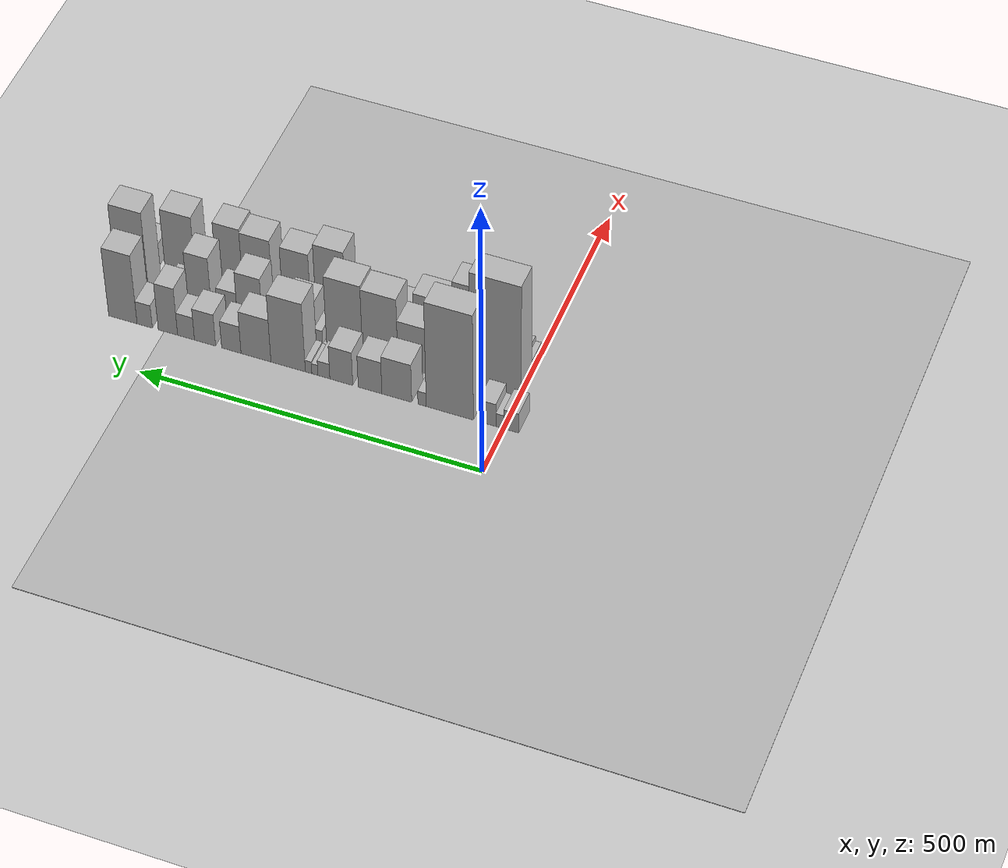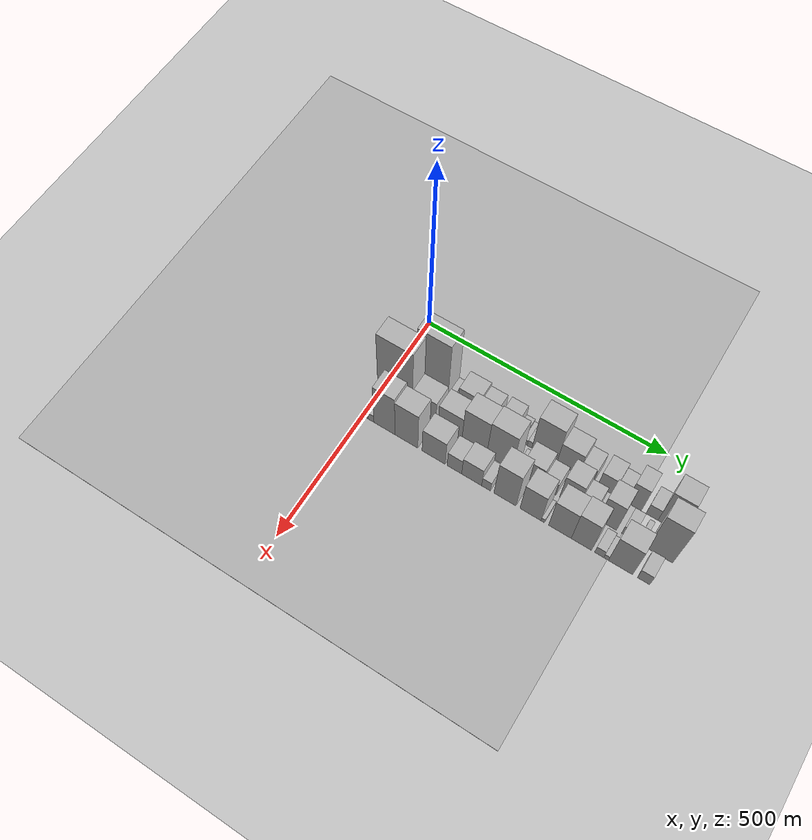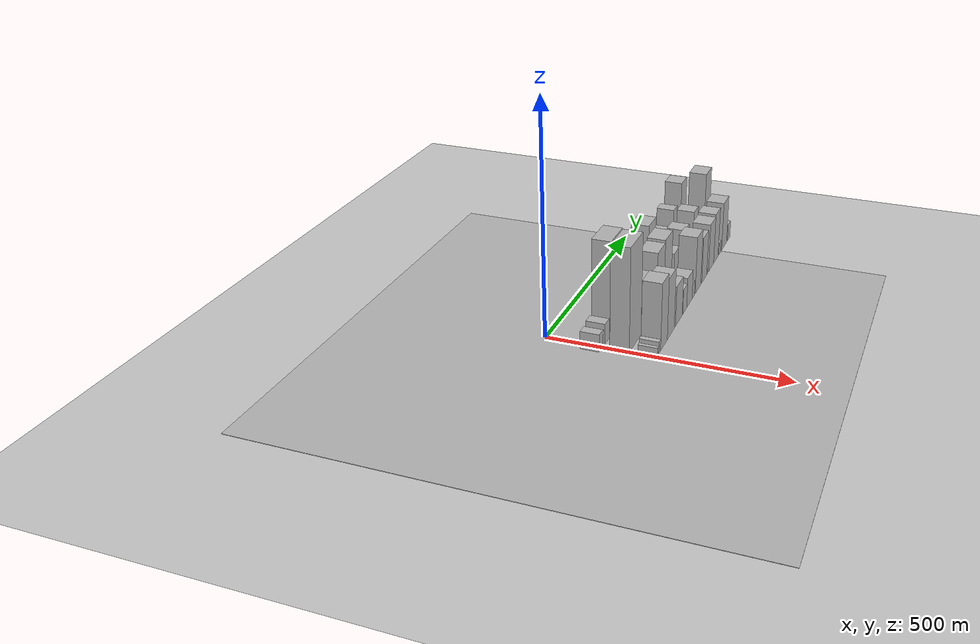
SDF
<sdf version="1.6">
 <world name="default">
  <include><name>ground_plane_1</name><uri>model://HANNAS_ground_plane</uri></include>
  <include>
   <name>ground_plane_2</name>
   <uri>model://HANNAS_ground_plane</uri>
   <pose>100 0 0  0 0 0</pose>
  </include>
  <model name="building_17">
   <static>1</static>
   <pose>100.0000 -10.1264 0 0.000000 0.000000 0.000000</pose>
   <link name="link">
    <pose>0 0 19.50 0 0 0</pose>
    <collision name="collision"><geometry><box><size>40.0000 21.6532 39.0000</size></box></geometry></collision>
    <visual name="visual">
     <cast_shadows>0</cast_shadows>
     <geometry><box><size>40.0000 21.6532 39.0000</size></box></geometry>
     <material>
      <script>
       <uri>model://HANNAS_wall/materials/scripts</uri>
       <uri>model://HANNAS_wall/materials/textures</uri>
       <name>vrc/HANNAS_wall</name>
      </script>
     </material>
    </visual>
   </link>
  </model>
  <model name="building_18">
   <static>1</static>
   <pose>100.0000 6.3788 0 0.000000 0.000000 0.000000</pose>
   <link name="link">
    <pose>0 0 13.50 0 0 0</pose>
    <collision name="collision"><geometry><box><size>40.0000 11.3573 27.0000</size></box></geometry></collision>
    <visual name="visual">
     <cast_shadows>0</cast_shadows>
     <geometry><box><size>40.0000 11.3573 27.0000</size></box></geometry>
     <material>
      <script>
       <uri>model://HANNAS_wall/materials/scripts</uri>
       <uri>model://HANNAS_wall/materials/textures</uri>
       <name>vrc/HANNAS_wall</name>
      </script>
     </material>
    </visual>
   </link>
  </model>
  <model name="building_19">
   <static>1</static>
   <pose>100.0000 24.2329 0 0.000000 0.000000 0.000000</pose>
   <link name="link">
    <pose>0 0 22.50 0 0 0</pose>
    <collision name="collision"><geometry><box><size>40.0000 24.3510 45.0000</size></box></geometry></collision>
    <visual name="visual">
     <cast_shadows>0</cast_shadows>
     <geometry><box><size>40.0000 24.3510 45.0000</size></box></geometry>
     <material>
      <script>
       <uri>model://HANNAS_wall/materials/scripts</uri>
       <uri>model://HANNAS_wall/materials/textures</uri>
       <name>vrc/HANNAS_wall</name>
      </script>
     </material>
    </visual>
   </link>
  </model>
  <model name="building_20">
   <static>1</static>
   <pose>100.0000 78.5924 0 0.000000 0.000000 0.000000</pose>
   <link name="link">
    <pose>0 0 103.50 0 0 0</pose>
    <collision name="collision"><geometry><box><size>40.0000 68.3679 207.0000</size></box></geometry></collision>
    <visual name="visual">
     <cast_shadows>0</cast_shadows>
     <geometry><box><size>40.0000 68.3679 207.0000</size></box></geometry>
     <material>
      <script>
       <uri>model://HANNAS_wall/materials/scripts</uri>
       <uri>model://HANNAS_wall/materials/textures</uri>
       <name>vrc/HANNAS_wall</name>
      </script>
     </material>
    </visual>
   </link>
  </model>
  <model name="building_21">
   <static>1</static>
   <pose>100.0000 118.8101 0 0.000000 0.000000 0.000000</pose>
   <link name="link">
    <pose>0 0 13.50 0 0 0</pose>
    <collision name="collision"><geometry><box><size>40.0000 12.0674 27.0000</size></box></geometry></collision>
    <visual name="visual">
     <cast_shadows>0</cast_shadows>
     <geometry><box><size>40.0000 12.0674 27.0000</size></box></geometry>
     <material>
      <script>
       <uri>model://HANNAS_wall/materials/scripts</uri>
       <uri>model://HANNAS_wall/materials/textures</uri>
       <name>vrc/HANNAS_wall</name>
      </script>
     </material>
    </visual>
   </link>
  </model>
  <model name="building_22">
   <static>1</static>
   <pose>100.0000 155.6362 0 0.000000 0.000000 0.000000</pose>
   <link name="link">
    <pose>0 0 37.50 0 0 0</pose>
    <collision name="collision"><geometry><box><size>40.0000 43.5848 75.0000</size></box></geometry></collision>
    <visual name="visual">
     <cast_shadows>0</cast_shadows>
     <geometry><box><size>40.0000 43.5848 75.0000</size></box></geometry>
     <material>
      <script>
       <uri>model://HANNAS_wall/materials/scripts</uri>
       <uri>model://HANNAS_wall/materials/textures</uri>
       <name>vrc/HANNAS_wall</name>
      </script>
     </material>
    </visual>
   </link>
  </model>
  <model name="building_23">
   <static>1</static>
   <pose>100.0000 194.7399 0 0.000000 0.000000 0.000000</pose>
   <link name="link">
    <pose>0 0 31.50 0 0 0</pose>
    <collision name="collision"><geometry><box><size>40.0000 34.6225 63.0000</size></box></geometry></collision>
    <visual name="visual">
     <cast_shadows>0</cast_shadows>
     <geometry><box><size>40.0000 34.6225 63.0000</size></box></geometry>
     <material>
      <script>
       <uri>model://HANNAS_wall/materials/scripts</uri>
       <uri>model://HANNAS_wall/materials/textures</uri>
       <name>vrc/HANNAS_wall</name>
      </script>
     </material>
    </visual>
   </link>
  </model>
  <model name="building_24">
   <static>1</static>
   <pose>100.0000 236.9002 0 0.000000 0.000000 0.000000</pose>
   <link name="link">
    <pose>0 0 33.00 0 0 0</pose>
    <collision name="collision"><geometry><box><size>40.0000 33.6981 66.0000</size></box></geometry></collision>
    <visual name="visual">
     <cast_shadows>0</cast_shadows>
     <geometry><box><size>40.0000 33.6981 66.0000</size></box></geometry>
     <material>
      <script>
       <uri>model://HANNAS_wall/materials/scripts</uri>
       <uri>model://HANNAS_wall/materials/textures</uri>
       <name>vrc/HANNAS_wall</name>
      </script>
     </material>
    </visual>
   </link>
  </model>
  <model name="building_25">
   <static>1</static>
   <pose>100.0000 262.5247 0 0.000000 0.000000 0.000000</pose>
   <link name="link">
    <pose>0 0 15.00 0 0 0</pose>
    <collision name="collision"><geometry><box><size>40.0000 17.5508 30.0000</size></box></geometry></collision>
    <visual name="visual">
     <cast_shadows>0</cast_shadows>
     <geometry><box><size>40.0000 17.5508 30.0000</size></box></geometry>
     <material>
      <script>
       <uri>model://HANNAS_wall/materials/scripts</uri>
       <uri>model://HANNAS_wall/materials/textures</uri>
       <name>vrc/HANNAS_wall</name>
      </script>
     </material>
    </visual>
   </link>
  </model>
  <model name="building_26">
   <static>1</static>
   <pose>100.0000 275.7841 0 0.000000 0.000000 0.000000</pose>
   <link name="link">
    <pose>0 0 10.50 0 0 0</pose>
    <collision name="collision"><geometry><box><size>40.0000 8.9680 21.0000</size></box></geometry></collision>
    <visual name="visual">
     <cast_shadows>0</cast_shadows>
     <geometry><box><size>40.0000 8.9680 21.0000</size></box></geometry>
     <material>
      <script>
       <uri>model://HANNAS_wall/materials/scripts</uri>
       <uri>model://HANNAS_wall/materials/textures</uri>
       <name>vrc/HANNAS_wall</name>
      </script>
     </material>
    </visual>
   </link>
  </model>
  <model name="building_27">
   <static>1</static>
   <pose>100.0000 285.0695 0 0.000000 0.000000 0.000000</pose>
   <link name="link">
    <pose>0 0 12.00 0 0 0</pose>
    <collision name="collision"><geometry><box><size>40.0000 9.6028 24.0000</size></box></geometry></collision>
    <visual name="visual">
     <cast_shadows>0</cast_shadows>
     <geometry><box><size>40.0000 9.6028 24.0000</size></box></geometry>
     <material>
      <script>
       <uri>model://HANNAS_wall/materials/scripts</uri>
       <uri>model://HANNAS_wall/materials/textures</uri>
       <name>vrc/HANNAS_wall</name>
      </script>
     </material>
    </visual>
   </link>
  </model>
  <model name="building_28">
   <static>1</static>
   <pose>100.0000 315.3543 0 0.000000 0.000000 0.000000</pose>
   <link name="link">
    <pose>0 0 67.50 0 0 0</pose>
    <collision name="collision"><geometry><box><size>40.0000 50.9669 135.0000</size></box></geometry></collision>
    <visual name="visual">
     <cast_shadows>0</cast_shadows>
     <geometry><box><size>40.0000 50.9669 135.0000</size></box></geometry>
     <material>
      <script>
       <uri>model://HANNAS_wall/materials/scripts</uri>
       <uri>model://HANNAS_wall/materials/textures</uri>
       <name>vrc/HANNAS_wall</name>
      </script>
     </material>
    </visual>
   </link>
  </model>
  <model name="building_29">
   <static>1</static>
   <pose>100.0000 363.0574 0 0.000000 0.000000 0.000000</pose>
   <link name="link">
    <pose>0 0 42.00 0 0 0</pose>
    <collision name="collision"><geometry><box><size>40.0000 44.4392 84.0000</size></box></geometry></collision>
    <visual name="visual">
     <cast_shadows>0</cast_shadows>
     <geometry><box><size>40.0000 44.4392 84.0000</size></box></geometry>
     <material>
      <script>
       <uri>model://HANNAS_wall/materials/scripts</uri>
       <uri>model://HANNAS_wall/materials/textures</uri>
       <name>vrc/HANNAS_wall</name>
      </script>
     </material>
    </visual>
   </link>
  </model>
  <model name="building_30">
   <static>1</static>
   <pose>100.0000 399.7521 0 0.000000 0.000000 0.000000</pose>
   <link name="link">
    <pose>0 0 27.00 0 0 0</pose>
    <collision name="collision"><geometry><box><size>40.0000 28.9502 54.0000</size></box></geometry></collision>
    <visual name="visual">
     <cast_shadows>0</cast_shadows>
     <geometry><box><size>40.0000 28.9502 54.0000</size></box></geometry>
     <material>
      <script>
       <uri>model://HANNAS_wall/materials/scripts</uri>
       <uri>model://HANNAS_wall/materials/textures</uri>
       <name>vrc/HANNAS_wall</name>
      </script>
     </material>
    </visual>
   </link>
  </model>
  <model name="building_31">
   <static>1</static>
   <pose>100.0000 439.0768 0 0.000000 0.000000 0.000000</pose>
   <link name="link">
    <pose>0 0 31.50 0 0 0</pose>
    <collision name="collision"><geometry><box><size>40.0000 31.6992 63.0000</size></box></geometry></collision>
    <visual name="visual">
     <cast_shadows>0</cast_shadows>
     <geometry><box><size>40.0000 31.6992 63.0000</size></box></geometry>
     <material>
      <script>
       <uri>model://HANNAS_wall/materials/scripts</uri>
       <uri>model://HANNAS_wall/materials/textures</uri>
       <name>vrc/HANNAS_wall</name>
      </script>
     </material>
    </visual>
   </link>
  </model>
  <model name="building_32">
   <static>1</static>
   <pose>100.0000 467.5803 0 0.000000 0.000000 0.000000</pose>
   <link name="link">
    <pose>0 0 22.50 0 0 0</pose>
    <collision name="collision"><geometry><box><size>40.0000 25.3079 45.0000</size></box></geometry></collision>
    <visual name="visual">
     <cast_shadows>0</cast_shadows>
     <geometry><box><size>40.0000 25.3079 45.0000</size></box></geometry>
     <material>
      <script>
       <uri>model://HANNAS_wall/materials/scripts</uri>
       <uri>model://HANNAS_wall/materials/textures</uri>
       <name>vrc/HANNAS_wall</name>
      </script>
     </material>
    </visual>
   </link>
  </model>
  <model name="building_33">
   <static>1</static>
   <pose>100.0000 494.7673 0 0.000000 0.000000 0.000000</pose>
   <link name="link">
    <pose>0 0 46.50 0 0 0</pose>
    <collision name="collision"><geometry><box><size>40.0000 29.0660 93.0000</size></box></geometry></collision>
    <visual name="visual">
     <cast_shadows>0</cast_shadows>
     <geometry><box><size>40.0000 29.0660 93.0000</size></box></geometry>
     <material>
      <script>
       <uri>model://HANNAS_wall/materials/scripts</uri>
       <uri>model://HANNAS_wall/materials/textures</uri>
       <name>vrc/HANNAS_wall</name>
      </script>
     </material>
    </visual>
   </link>
  </model>
  <model name="building_34">
   <static>1</static>
   <pose>100.0000 529.8058 0 0.000000 0.000000 0.000000</pose>
   <link name="link">
    <pose>0 0 22.50 0 0 0</pose>
    <collision name="collision"><geometry><box><size>40.0000 23.0110 45.0000</size></box></geometry></collision>
    <visual name="visual">
     <cast_shadows>0</cast_shadows>
     <geometry><box><size>40.0000 23.0110 45.0000</size></box></geometry>
     <material>
      <script>
       <uri>model://HANNAS_wall/materials/scripts</uri>
       <uri>model://HANNAS_wall/materials/textures</uri>
       <name>vrc/HANNAS_wall</name>
      </script>
     </material>
    </visual>
   </link>
  </model>
  <model name="building_35">
   <static>1</static>
   <pose>100.0000 562.7475 0 0.000000 0.000000 0.000000</pose>
   <link name="link">
    <pose>0 0 67.50 0 0 0</pose>
    <collision name="collision"><geometry><box><size>40.0000 42.8724 135.0000</size></box></geometry></collision>
    <visual name="visual">
     <cast_shadows>0</cast_shadows>
     <geometry><box><size>40.0000 42.8724 135.0000</size></box></geometry>
     <material>
      <script>
       <uri>model://HANNAS_wall/materials/scripts</uri>
       <uri>model://HANNAS_wall/materials/textures</uri>
       <name>vrc/HANNAS_wall</name>
      </script>
     </material>
    </visual>
   </link>
  </model>
  <model name="building_55">
   <static>1</static>
   <pose>155.0000 33.6723 0 0.000000 0.000000 0.000000</pose>
   <link name="link">
    <pose>0 0 112.50 0 0 0</pose>
    <collision name="collision"><geometry><box><size>40.0000 74.3632 225.0000</size></box></geometry></collision>
    <visual name="visual">
     <cast_shadows>0</cast_shadows>
     <geometry><box><size>40.0000 74.3632 225.0000</size></box></geometry>
     <material>
      <script>
       <uri>model://HANNAS_wall/materials/scripts</uri>
       <uri>model://HANNAS_wall/materials/textures</uri>
       <name>vrc/HANNAS_wall</name>
      </script>
     </material>
    </visual>
   </link>
  </model>
  <model name="building_56">
   <static>1</static>
   <pose>155.0000 95.7689 0 0.000000 0.000000 0.000000</pose>
   <link name="link">
    <pose>0 0 45.00 0 0 0</pose>
    <collision name="collision"><geometry><box><size>40.0000 49.8302 90.0000</size></box></geometry></collision>
    <visual name="visual">
     <cast_shadows>0</cast_shadows>
     <geometry><box><size>40.0000 49.8302 90.0000</size></box></geometry>
     <material>
      <script>
       <uri>model://HANNAS_wall/materials/scripts</uri>
       <uri>model://HANNAS_wall/materials/textures</uri>
       <name>vrc/HANNAS_wall</name>
      </script>
     </material>
    </visual>
   </link>
  </model>
  <model name="building_57">
   <static>1</static>
   <pose>155.0000 150.8717 0 0.000000 0.000000 0.000000</pose>
   <link name="link">
    <pose>0 0 45.00 0 0 0</pose>
    <collision name="collision"><geometry><box><size>40.0000 50.3753 90.0000</size></box></geometry></collision>
    <visual name="visual">
     <cast_shadows>0</cast_shadows>
     <geometry><box><size>40.0000 50.3753 90.0000</size></box></geometry>
     <material>
      <script>
       <uri>model://HANNAS_wall/materials/scripts</uri>
       <uri>model://HANNAS_wall/materials/textures</uri>
       <name>vrc/HANNAS_wall</name>
      </script>
     </material>
    </visual>
   </link>
  </model>
  <model name="building_58">
   <static>1</static>
   <pose>155.0000 202.0515 0 0.000000 0.000000 0.000000</pose>
   <link name="link">
    <pose>0 0 66.00 0 0 0</pose>
    <collision name="collision"><geometry><box><size>40.0000 51.9842 132.0000</size></box></geometry></collision>
    <visual name="visual">
     <cast_shadows>0</cast_shadows>
     <geometry><box><size>40.0000 51.9842 132.0000</size></box></geometry>
     <material>
      <script>
       <uri>model://HANNAS_wall/materials/scripts</uri>
       <uri>model://HANNAS_wall/materials/textures</uri>
       <name>vrc/HANNAS_wall</name>
      </script>
     </material>
    </visual>
   </link>
  </model>
  <model name="building_59">
   <static>1</static>
   <pose>155.0000 254.6451 0 0.000000 0.000000 0.000000</pose>
   <link name="link">
    <pose>0 0 69.00 0 0 0</pose>
    <collision name="collision"><geometry><box><size>40.0000 53.2030 138.0000</size></box></geometry></collision>
    <visual name="visual">
     <cast_shadows>0</cast_shadows>
     <geometry><box><size>40.0000 53.2030 138.0000</size></box></geometry>
     <material>
      <script>
       <uri>model://HANNAS_wall/materials/scripts</uri>
       <uri>model://HANNAS_wall/materials/textures</uri>
       <name>vrc/HANNAS_wall</name>
      </script>
     </material>
    </visual>
   </link>
  </model>
  <model name="building_60">
   <static>1</static>
   <pose>155.0000 293.3930 0 0.000000 0.000000 0.000000</pose>
   <link name="link">
    <pose>0 0 13.50 0 0 0</pose>
    <collision name="collision"><geometry><box><size>40.0000 12.2928 27.0000</size></box></geometry></collision>
    <visual name="visual">
     <cast_shadows>0</cast_shadows>
     <geometry><box><size>40.0000 12.2928 27.0000</size></box></geometry>
     <material>
      <script>
       <uri>model://HANNAS_wall/materials/scripts</uri>
       <uri>model://HANNAS_wall/materials/textures</uri>
       <name>vrc/HANNAS_wall</name>
      </script>
     </material>
    </visual>
   </link>
  </model>
  <model name="building_61">
   <static>1</static>
   <pose>155.0000 320.3367 0 0.000000 0.000000 0.000000</pose>
   <link name="link">
    <pose>0 0 37.50 0 0 0</pose>
    <collision name="collision"><geometry><box><size>40.0000 41.5947 75.0000</size></box></geometry></collision>
    <visual name="visual">
     <cast_shadows>0</cast_shadows>
     <geometry><box><size>40.0000 41.5947 75.0000</size></box></geometry>
     <material>
      <script>
       <uri>model://HANNAS_wall/materials/scripts</uri>
       <uri>model://HANNAS_wall/materials/textures</uri>
       <name>vrc/HANNAS_wall</name>
      </script>
     </material>
    </visual>
   </link>
  </model>
  <model name="building_62">
   <static>1</static>
   <pose>155.0000 355.3555 0 0.000000 0.000000 0.000000</pose>
   <link name="link">
    <pose>0 0 24.00 0 0 0</pose>
    <collision name="collision"><geometry><box><size>40.0000 28.4429 48.0000</size></box></geometry></collision>
    <visual name="visual">
     <cast_shadows>0</cast_shadows>
     <geometry><box><size>40.0000 28.4429 48.0000</size></box></geometry>
     <material>
      <script>
       <uri>model://HANNAS_wall/materials/scripts</uri>
       <uri>model://HANNAS_wall/materials/textures</uri>
       <name>vrc/HANNAS_wall</name>
      </script>
     </material>
    </visual>
   </link>
  </model>
  <model name="building_63">
   <static>1</static>
   <pose>155.0000 395.4484 0 0.000000 0.000000 0.000000</pose>
   <link name="link">
    <pose>0 0 48.00 0 0 0</pose>
    <collision name="collision"><geometry><box><size>40.0000 37.7430 96.0000</size></box></geometry></collision>
    <visual name="visual">
     <cast_shadows>0</cast_shadows>
     <geometry><box><size>40.0000 37.7430 96.0000</size></box></geometry>
     <material>
      <script>
       <uri>model://HANNAS_wall/materials/scripts</uri>
       <uri>model://HANNAS_wall/materials/textures</uri>
       <name>vrc/HANNAS_wall</name>
      </script>
     </material>
    </visual>
   </link>
  </model>
  <model name="building_64">
   <static>1</static>
   <pose>155.0000 429.2664 0 0.000000 0.000000 0.000000</pose>
   <link name="link">
    <pose>0 0 27.00 0 0 0</pose>
    <collision name="collision"><geometry><box><size>40.0000 29.8930 54.0000</size></box></geometry></collision>
    <visual name="visual">
     <cast_shadows>0</cast_shadows>
     <geometry><box><size>40.0000 29.8930 54.0000</size></box></geometry>
     <material>
      <script>
       <uri>model://HANNAS_wall/materials/scripts</uri>
       <uri>model://HANNAS_wall/materials/textures</uri>
       <name>vrc/HANNAS_wall</name>
      </script>
     </material>
    </visual>
   </link>
  </model>
  <model name="building_65">
   <static>1</static>
   <pose>155.0000 471.1019 0 0.000000 0.000000 0.000000</pose>
   <link name="link">
    <pose>0 0 54.00 0 0 0</pose>
    <collision name="collision"><geometry><box><size>40.0000 35.7780 108.0000</size></box></geometry></collision>
    <visual name="visual">
     <cast_shadows>0</cast_shadows>
     <geometry><box><size>40.0000 35.7780 108.0000</size></box></geometry>
     <material>
      <script>
       <uri>model://HANNAS_wall/materials/scripts</uri>
       <uri>model://HANNAS_wall/materials/textures</uri>
       <name>vrc/HANNAS_wall</name>
      </script>
     </material>
    </visual>
   </link>
  </model>
  <model name="building_66">
   <static>1</static>
   <pose>155.0000 509.1096 0 0.000000 0.000000 0.000000</pose>
   <link name="link">
    <pose>0 0 18.00 0 0 0</pose>
    <collision name="collision"><geometry><box><size>40.0000 20.2374 36.0000</size></box></geometry></collision>
    <visual name="visual">
     <cast_shadows>0</cast_shadows>
     <geometry><box><size>40.0000 20.2374 36.0000</size></box></geometry>
     <material>
      <script>
       <uri>model://HANNAS_wall/materials/scripts</uri>
       <uri>model://HANNAS_wall/materials/textures</uri>
       <name>vrc/HANNAS_wall</name>
      </script>
     </material>
    </visual>
   </link>
  </model>
  <model name="building_67">
   <static>1</static>
   <pose>155.0000 534.2250 0 0.000000 0.000000 0.000000</pose>
   <link name="link">
    <pose>0 0 12.00 0 0 0</pose>
    <collision name="collision"><geometry><box><size>40.0000 9.9933 24.0000</size></box></geometry></collision>
    <visual name="visual">
     <cast_shadows>0</cast_shadows>
     <geometry><box><size>40.0000 9.9933 24.0000</size></box></geometry>
     <material>
      <script>
       <uri>model://HANNAS_wall/materials/scripts</uri>
       <uri>model://HANNAS_wall/materials/textures</uri>
       <name>vrc/HANNAS_wall</name>
      </script>
     </material>
    </visual>
   </link>
  </model>
  <model name="building_68">
   <static>1</static>
   <pose>155.0000 572.6320 0 0.000000 0.000000 0.000000</pose>
   <link name="link">
    <pose>0 0 81.00 0 0 0</pose>
    <collision name="collision"><geometry><box><size>40.0000 48.8207 162.0000</size></box></geometry></collision>
    <visual name="visual">
     <cast_shadows>0</cast_shadows>
     <geometry><box><size>40.0000 48.8207 162.0000</size></box></geometry>
     <material>
      <script>
       <uri>model://HANNAS_wall/materials/scripts</uri>
       <uri>model://HANNAS_wall/materials/textures</uri>
       <name>vrc/HANNAS_wall</name>
      </script>
     </material>
    </visual>
   </link>
  </model>
  <model name="building_84">
   <static>1</static>
   <pose>210.0000 6.9956 0 0.000000 0.000000 0.000000</pose>
   <link name="link">
    <pose>0 0 9.00 0 0 0</pose>
    <collision name="collision"><geometry><box><size>40.0000 8.4530 18.0000</size></box></geometry></collision>
    <visual name="visual">
     <cast_shadows>0</cast_shadows>
     <geometry><box><size>40.0000 8.4530 18.0000</size></box></geometry>
     <material>
      <script>
       <uri>model://HANNAS_wall/materials/scripts</uri>
       <uri>model://HANNAS_wall/materials/textures</uri>
       <name>vrc/HANNAS_wall</name>
      </script>
     </material>
    </visual>
   </link>
  </model>
  <model name="building_85">
   <static>1</static>
   <pose>210.0000 17.2608 0 0.000000 0.000000 0.000000</pose>
   <link name="link">
    <pose>0 0 13.50 0 0 0</pose>
    <collision name="collision"><geometry><box><size>40.0000 12.0774 27.0000</size></box></geometry></collision>
    <visual name="visual">
     <cast_shadows>0</cast_shadows>
     <geometry><box><size>40.0000 12.0774 27.0000</size></box></geometry>
     <material>
      <script>
       <uri>model://HANNAS_wall/materials/scripts</uri>
       <uri>model://HANNAS_wall/materials/textures</uri>
       <name>vrc/HANNAS_wall</name>
      </script>
     </material>
    </visual>
   </link>
  </model>
  <model name="building_86">
   <static>1</static>
   <pose>210.0000 45.9058 0 0.000000 0.000000 0.000000</pose>
   <link name="link">
    <pose>0 0 73.50 0 0 0</pose>
    <collision name="collision"><geometry><box><size>40.0000 45.2126 147.0000</size></box></geometry></collision>
    <visual name="visual">
     <cast_shadows>0</cast_shadows>
     <geometry><box><size>40.0000 45.2126 147.0000</size></box></geometry>
     <material>
      <script>
       <uri>model://HANNAS_wall/materials/scripts</uri>
       <uri>model://HANNAS_wall/materials/textures</uri>
       <name>vrc/HANNAS_wall</name>
      </script>
     </material>
    </visual>
   </link>
  </model>
  <model name="building_87">
   <static>1</static>
   <pose>210.0000 92.8618 0 0.000000 0.000000 0.000000</pose>
   <link name="link">
    <pose>0 0 67.50 0 0 0</pose>
    <collision name="collision"><geometry><box><size>40.0000 48.6993 135.0000</size></box></geometry></collision>
    <visual name="visual">
     <cast_shadows>0</cast_shadows>
     <geometry><box><size>40.0000 48.6993 135.0000</size></box></geometry>
     <material>
      <script>
       <uri>model://HANNAS_wall/materials/scripts</uri>
       <uri>model://HANNAS_wall/materials/textures</uri>
       <name>vrc/HANNAS_wall</name>
      </script>
     </material>
    </visual>
   </link>
  </model>
  <model name="building_88">
   <static>1</static>
   <pose>210.0000 150.5448 0 0.000000 0.000000 0.000000</pose>
   <link name="link">
    <pose>0 0 45.00 0 0 0</pose>
    <collision name="collision"><geometry><box><size>40.0000 48.6667 90.0000</size></box></geometry></collision>
    <visual name="visual">
     <cast_shadows>0</cast_shadows>
     <geometry><box><size>40.0000 48.6667 90.0000</size></box></geometry>
     <material>
      <script>
       <uri>model://HANNAS_wall/materials/scripts</uri>
       <uri>model://HANNAS_wall/materials/textures</uri>
       <name>vrc/HANNAS_wall</name>
      </script>
     </material>
    </visual>
   </link>
  </model>
  <model name="building_89">
   <static>1</static>
   <pose>210.0000 194.0129 0 0.000000 0.000000 0.000000</pose>
   <link name="link">
    <pose>0 0 28.50 0 0 0</pose>
    <collision name="collision"><geometry><box><size>40.0000 30.2696 57.0000</size></box></geometry></collision>
    <visual name="visual">
     <cast_shadows>0</cast_shadows>
     <geometry><box><size>40.0000 30.2696 57.0000</size></box></geometry>
     <material>
      <script>
       <uri>model://HANNAS_wall/materials/scripts</uri>
       <uri>model://HANNAS_wall/materials/textures</uri>
       <name>vrc/HANNAS_wall</name>
      </script>
     </material>
    </visual>
   </link>
  </model>
  <model name="building_90">
   <static>1</static>
   <pose>210.0000 229.7023 0 0.000000 0.000000 0.000000</pose>
   <link name="link">
    <pose>0 0 34.50 0 0 0</pose>
    <collision name="collision"><geometry><box><size>40.0000 41.1091 69.0000</size></box></geometry></collision>
    <visual name="visual">
     <cast_shadows>0</cast_shadows>
     <geometry><box><size>40.0000 41.1091 69.0000</size></box></geometry>
     <material>
      <script>
       <uri>model://HANNAS_wall/materials/scripts</uri>
       <uri>model://HANNAS_wall/materials/textures</uri>
       <name>vrc/HANNAS_wall</name>
      </script>
     </material>
    </visual>
   </link>
  </model>
  <model name="building_91">
   <static>1</static>
   <pose>210.0000 259.3241 0 0.000000 0.000000 0.000000</pose>
   <link name="link">
    <pose>0 0 18.00 0 0 0</pose>
    <collision name="collision"><geometry><box><size>40.0000 18.1344 36.0000</size></box></geometry></collision>
    <visual name="visual">
     <cast_shadows>0</cast_shadows>
     <geometry><box><size>40.0000 18.1344 36.0000</size></box></geometry>
     <material>
      <script>
       <uri>model://HANNAS_wall/materials/scripts</uri>
       <uri>model://HANNAS_wall/materials/textures</uri>
       <name>vrc/HANNAS_wall</name>
      </script>
     </material>
    </visual>
   </link>
  </model>
  <model name="building_92">
   <static>1</static>
   <pose>210.0000 297.7710 0 0.000000 0.000000 0.000000</pose>
   <link name="link">
    <pose>0 0 66.00 0 0 0</pose>
    <collision name="collision"><geometry><box><size>40.0000 44.7594 132.0000</size></box></geometry></collision>
    <visual name="visual">
     <cast_shadows>0</cast_shadows>
     <geometry><box><size>40.0000 44.7594 132.0000</size></box></geometry>
     <material>
      <script>
       <uri>model://HANNAS_wall/materials/scripts</uri>
       <uri>model://HANNAS_wall/materials/textures</uri>
       <name>vrc/HANNAS_wall</name>
      </script>
     </material>
    </visual>
   </link>
  </model>
  <model name="building_93">
   <static>1</static>
   <pose>210.0000 349.2336 0 0.000000 0.000000 0.000000</pose>
   <link name="link">
    <pose>0 0 54.00 0 0 0</pose>
    <collision name="collision"><geometry><box><size>40.0000 42.1659 108.0000</size></box></geometry></collision>
    <visual name="visual">
     <cast_shadows>0</cast_shadows>
     <geometry><box><size>40.0000 42.1659 108.0000</size></box></geometry>
     <material>
      <script>
       <uri>model://HANNAS_wall/materials/scripts</uri>
       <uri>model://HANNAS_wall/materials/textures</uri>
       <name>vrc/HANNAS_wall</name>
      </script>
     </material>
    </visual>
   </link>
  </model>
  <model name="building_94">
   <static>1</static>
   <pose>210.0000 373.8457 0 0.000000 0.000000 0.000000</pose>
   <link name="link">
    <pose>0 0 7.50 0 0 0</pose>
    <collision name="collision"><geometry><box><size>40.0000 7.0583 15.0000</size></box></geometry></collision>
    <visual name="visual">
     <cast_shadows>0</cast_shadows>
     <geometry><box><size>40.0000 7.0583 15.0000</size></box></geometry>
     <material>
      <script>
       <uri>model://HANNAS_wall/materials/scripts</uri>
       <uri>model://HANNAS_wall/materials/textures</uri>
       <name>vrc/HANNAS_wall</name>
      </script>
     </material>
    </visual>
   </link>
  </model>
  <model name="building_95">
   <static>1</static>
   <pose>210.0000 407.6799 0 0.000000 0.000000 0.000000</pose>
   <link name="link">
    <pose>0 0 57.00 0 0 0</pose>
    <collision name="collision"><geometry><box><size>40.0000 44.6101 114.0000</size></box></geometry></collision>
    <visual name="visual">
     <cast_shadows>0</cast_shadows>
     <geometry><box><size>40.0000 44.6101 114.0000</size></box></geometry>
     <material>
      <script>
       <uri>model://HANNAS_wall/materials/scripts</uri>
       <uri>model://HANNAS_wall/materials/textures</uri>
       <name>vrc/HANNAS_wall</name>
      </script>
     </material>
    </visual>
   </link>
  </model>
  <model name="building_96">
   <static>1</static>
   <pose>210.0000 449.7719 0 0.000000 0.000000 0.000000</pose>
   <link name="link">
    <pose>0 0 60.00 0 0 0</pose>
    <collision name="collision"><geometry><box><size>40.0000 39.5739 120.0000</size></box></geometry></collision>
    <visual name="visual">
     <cast_shadows>0</cast_shadows>
     <geometry><box><size>40.0000 39.5739 120.0000</size></box></geometry>
     <material>
      <script>
       <uri>model://HANNAS_wall/materials/scripts</uri>
       <uri>model://HANNAS_wall/materials/textures</uri>
       <name>vrc/HANNAS_wall</name>
      </script>
     </material>
    </visual>
   </link>
  </model>
  <model name="building_97">
   <static>1</static>
   <pose>210.0000 484.4231 0 0.000000 0.000000 0.000000</pose>
   <link name="link">
    <pose>0 0 15.00 0 0 0</pose>
    <collision name="collision"><geometry><box><size>40.0000 17.7286 30.0000</size></box></geometry></collision>
    <visual name="visual">
     <cast_shadows>0</cast_shadows>
     <geometry><box><size>40.0000 17.7286 30.0000</size></box></geometry>
     <material>
      <script>
       <uri>model://HANNAS_wall/materials/scripts</uri>
       <uri>model://HANNAS_wall/materials/textures</uri>
       <name>vrc/HANNAS_wall</name>
      </script>
     </material>
    </visual>
   </link>
  </model>
  <model name="building_98">
   <static>1</static>
   <pose>210.0000 497.7654 0 0.000000 0.000000 0.000000</pose>
   <link name="link">
    <pose>0 0 9.00 0 0 0</pose>
    <collision name="collision"><geometry><box><size>40.0000 8.9559 18.0000</size></box></geometry></collision>
    <visual name="visual">
     <cast_shadows>0</cast_shadows>
     <geometry><box><size>40.0000 8.9559 18.0000</size></box></geometry>
     <material>
      <script>
       <uri>model://HANNAS_wall/materials/scripts</uri>
       <uri>model://HANNAS_wall/materials/textures</uri>
       <name>vrc/HANNAS_wall</name>
      </script>
     </material>
    </visual>
   </link>
  </model>
  <model name="building_99">
   <static>1</static>
   <pose>210.0000 525.4757 0 0.000000 0.000000 0.000000</pose>
   <link name="link">
    <pose>0 0 58.50 0 0 0</pose>
    <collision name="collision"><geometry><box><size>40.0000 46.4648 117.0000</size></box></geometry></collision>
    <visual name="visual">
     <cast_shadows>0</cast_shadows>
     <geometry><box><size>40.0000 46.4648 117.0000</size></box></geometry>
     <material>
      <script>
       <uri>model://HANNAS_wall/materials/scripts</uri>
       <uri>model://HANNAS_wall/materials/textures</uri>
       <name>vrc/HANNAS_wall</name>
      </script>
     </material>
    </visual>
   </link>
  </model>
  <model name="building_100">
   <static>1</static>
   <pose>210.0000 569.4620 0 0.000000 0.000000 0.000000</pose>
   <link name="link">
    <pose>0 0 21.00 0 0 0</pose>
    <collision name="collision"><geometry><box><size>40.0000 23.5079 42.0000</size></box></geometry></collision>
    <visual name="visual">
     <cast_shadows>0</cast_shadows>
     <geometry><box><size>40.0000 23.5079 42.0000</size></box></geometry>
     <material>
      <script>
       <uri>model://HANNAS_wall/materials/scripts</uri>
       <uri>model://HANNAS_wall/materials/textures</uri>
       <name>vrc/HANNAS_wall</name>
      </script>
     </material>
    </visual>
   </link>
  </model>
 </world>
</sdf>
